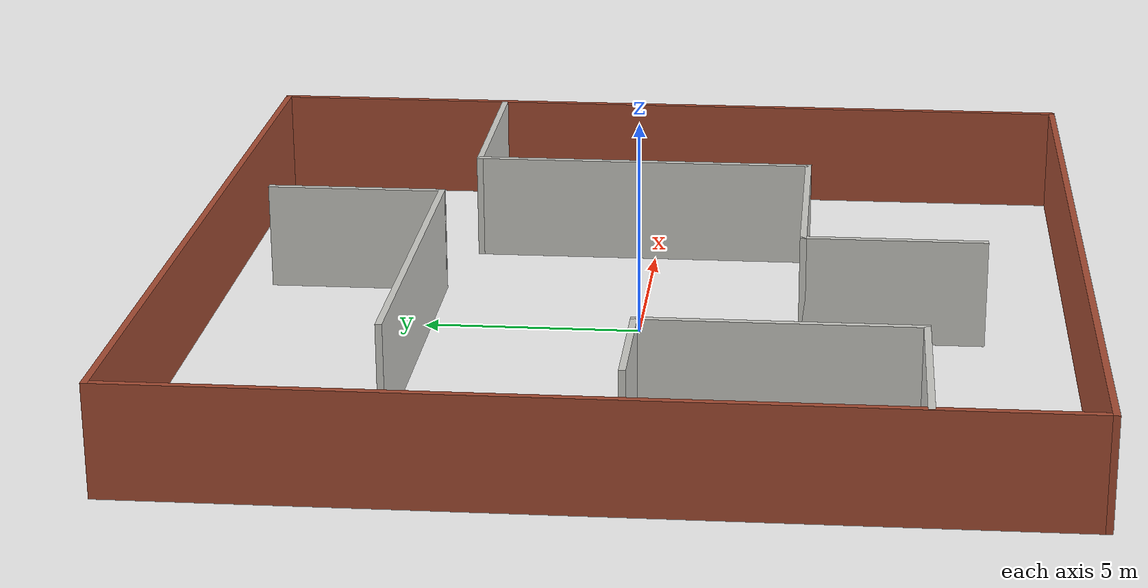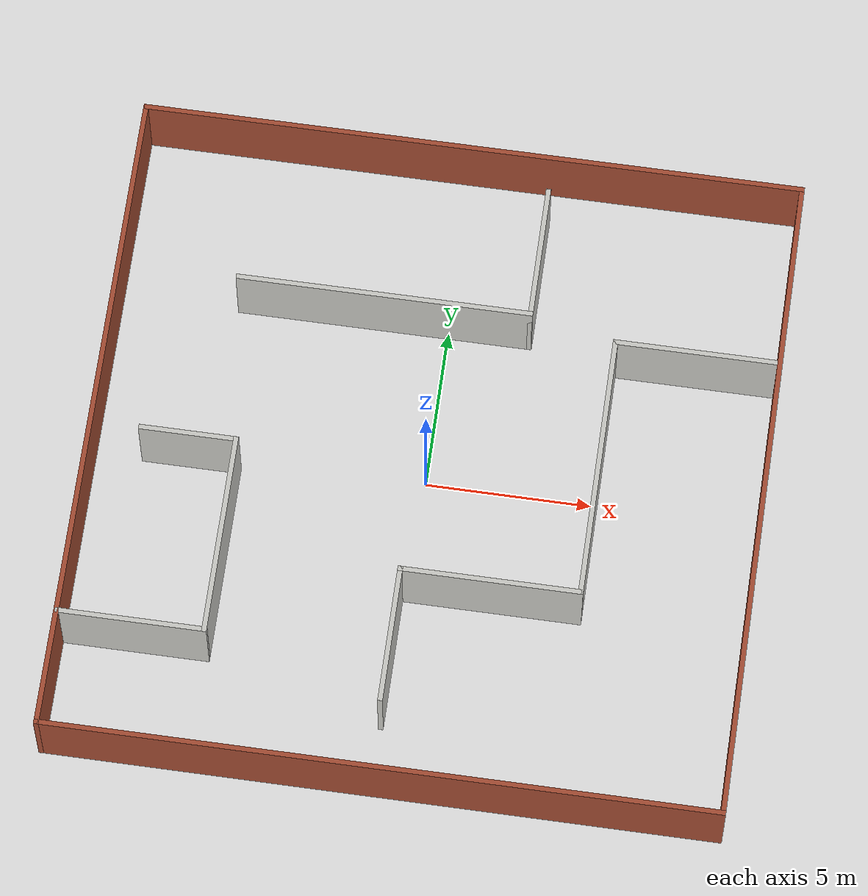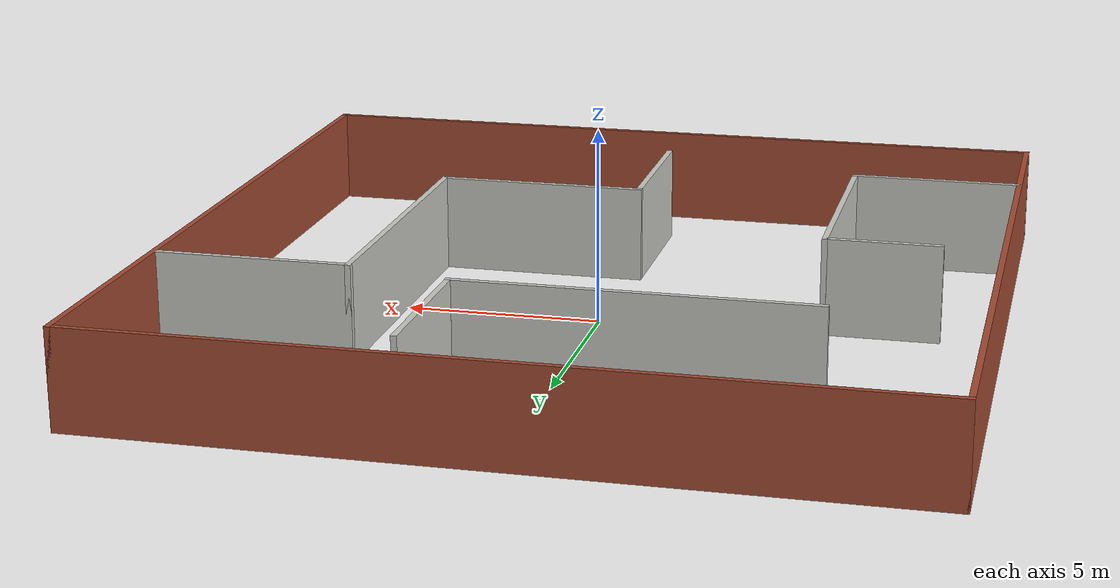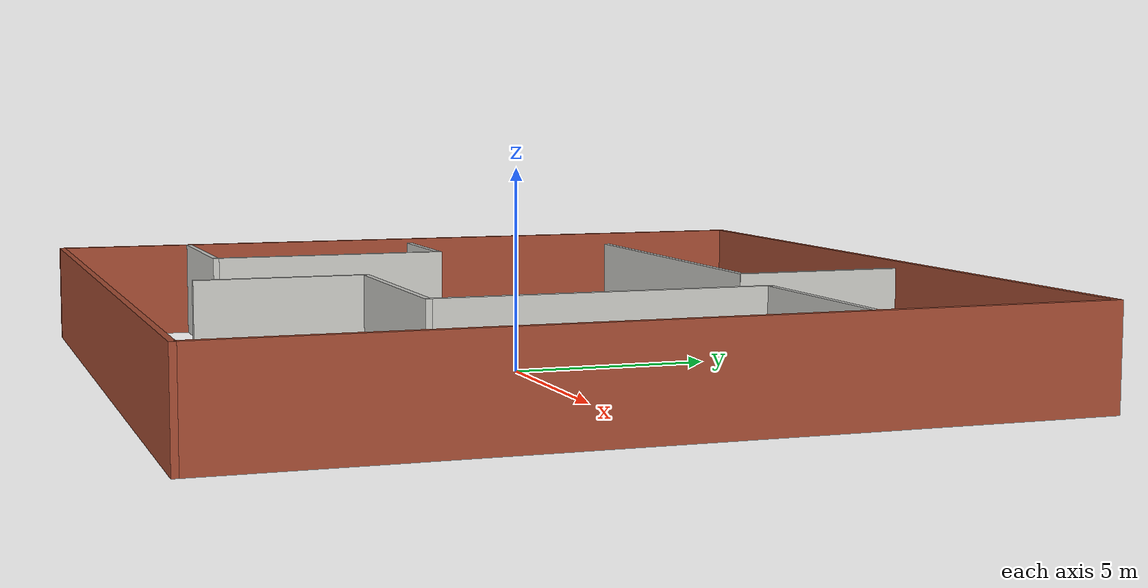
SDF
<?xml version='1.0'?>
<sdf version='1.7'>
  <model name='mapokela'>
    <pose>0.014826 0.104516 0 0 -0 0</pose>
    <link name='Wall_1'>
      <collision name='Wall_1_Collision'>
        <geometry>
          <box>
            <size>20.25 0.15 2.5</size>
          </box>
        </geometry>
        <pose>0 0 1.25 0 -0 0</pose>
      </collision>
      <visual name='Wall_1_Visual'>
        <pose>0 0 1.25 0 -0 0</pose>
        <geometry>
          <box>
            <size>20.25 0.15 2.5</size>
          </box>
        </geometry>
        <material>
          <script>
            <uri>file://media/materials/scripts/gazebo.material</uri>
            <name>Gazebo/Bricks</name>
          </script>
          <ambient>1 1 1 1</ambient>
        </material>
        <meta>
          <layer>0</layer>
        </meta>
      </visual>
      <pose>-0 10.05 0 0 -0 0</pose>
    </link>
    <link name='Wall_10'>
      <collision name='Wall_10_Collision'>
        <geometry>
          <box>
            <size>3 0.15 2.5</size>
          </box>
        </geometry>
        <pose>0 0 1.25 0 -0 0</pose>
      </collision>
      <visual name='Wall_10_Visual'>
        <pose>0 0 1.25 0 -0 0</pose>
        <geometry>
          <box>
            <size>3 0.15 2.5</size>
          </box>
        </geometry>
        <material>
          <script>
            <uri>file://media/materials/scripts/gazebo.material</uri>
            <name>Gazebo/CeilingTiled</name>
          </script>
          <ambient>0.435294 0.796078 0.67451 1</ambient>
        </material>
        <meta>
          <layer>0</layer>
        </meta>
      </visual>
      <pose>-7.09059 -0.435326 0 0 -0 3.14159</pose>
    </link>
    <link name='Wall_12'>
      <collision name='Wall_12_Collision'>
        <geometry>
          <box>
            <size>8.25 0.15 2.5</size>
          </box>
        </geometry>
        <pose>0 0 1.25 0 -0 0</pose>
      </collision>
      <visual name='Wall_12_Visual'>
        <pose>0 0 1.25 0 -0 0</pose>
        <geometry>
          <box>
            <size>8.25 0.15 2.5</size>
          </box>
        </geometry>
        <material>
          <script>
            <uri>file://media/materials/scripts/gazebo.material</uri>
            <name>Gazebo/CeilingTiled</name>
          </script>
          <ambient>0.760784 0.662745 0.627451 1</ambient>
        </material>
        <meta>
          <layer>0</layer>
        </meta>
      </visual>
      <pose>5.0956 0.20752 0 0 -0 -1.5708</pose>
    </link>
    <link name='Wall_13'>
      <collision name='Wall_13_Collision'>
        <geometry>
          <box>
            <size>5.5 0.15 2.5</size>
          </box>
        </geometry>
        <pose>0 0 1.25 0 -0 0</pose>
      </collision>
      <visual name='Wall_13_Visual'>
        <pose>0 0 1.25 0 -0 0</pose>
        <geometry>
          <box>
            <size>5.5 0.15 2.5</size>
          </box>
        </geometry>
        <material>
          <script>
            <uri>file://media/materials/scripts/gazebo.material</uri>
            <name>Gazebo/CeilingTiled</name>
          </script>
          <ambient>0.760784 0.662745 0.627451 1</ambient>
        </material>
        <meta>
          <layer>0</layer>
        </meta>
      </visual>
      <pose>2.4206 -3.84248 0 0 -0 3.14159</pose>
    </link>
    <link name='Wall_14'>
      <collision name='Wall_14_Collision'>
        <geometry>
          <box>
            <size>4.25 0.15 2.5</size>
          </box>
        </geometry>
        <pose>0 0 1.25 0 -0 0</pose>
      </collision>
      <visual name='Wall_14_Visual'>
        <pose>0 0 1.25 0 -0 0</pose>
        <geometry>
          <box>
            <size>4.25 0.15 2.5</size>
          </box>
        </geometry>
        <material>
          <script>
            <uri>file://media/materials/scripts/gazebo.material</uri>
            <name>Gazebo/CeilingTiled</name>
          </script>
          <ambient>0.760784 0.662745 0.627451 1</ambient>
        </material>
        <meta>
          <layer>0</layer>
        </meta>
      </visual>
      <pose>-0.254404 -5.89248 0 0 -0 -1.5708</pose>
    </link>
    <link name='Wall_16'>
      <collision name='Wall_16_Collision'>
        <geometry>
          <box>
            <size>9 0.15 2.5</size>
          </box>
        </geometry>
        <pose>0 0 1.25 0 -0 0</pose>
      </collision>
      <visual name='Wall_16_Visual'>
        <pose>0 0 1.25 0 -0 0</pose>
        <geometry>
          <box>
            <size>9 0.15 2.5</size>
          </box>
        </geometry>
        <material>
          <script>
            <uri>file://media/materials/scripts/gazebo.material</uri>
            <name>Gazebo/CeilingTiled</name>
          </script>
          <ambient>0.2 0.819608 0.478431 1</ambient>
        </material>
        <meta>
          <layer>0</layer>
        </meta>
      </visual>
      <pose>-1.96879 4.8239 0 0 -0 0</pose>
    </link>
    <link name='Wall_17'>
      <collision name='Wall_17_Collision'>
        <geometry>
          <box>
            <size>4.25 0.15 2.5</size>
          </box>
        </geometry>
        <pose>0 0 1.25 0 -0 0</pose>
      </collision>
      <visual name='Wall_17_Visual'>
        <pose>0 0 1.25 0 -0 0</pose>
        <geometry>
          <box>
            <size>4.25 0.15 2.5</size>
          </box>
        </geometry>
        <material>
          <script>
            <uri>file://media/materials/scripts/gazebo.material</uri>
            <name>Gazebo/CeilingTiled</name>
          </script>
          <ambient>0.2 0.819608 0.478431 1</ambient>
        </material>
        <meta>
          <layer>0</layer>
        </meta>
      </visual>
      <pose>2.45621 6.8739 0 0 -0 1.5708</pose>
    </link>
    <link name='Wall_19'>
      <collision name='Wall_19_Collision'>
        <geometry>
          <box>
            <size>5 0.15 2.5</size>
          </box>
        </geometry>
        <pose>0 0 1.25 0 -0 0</pose>
      </collision>
      <visual name='Wall_19_Visual'>
        <pose>0 0 1.25 0 -0 0</pose>
        <geometry>
          <box>
            <size>5 0.15 2.5</size>
          </box>
        </geometry>
        <material>
          <script>
            <uri>file://media/materials/scripts/gazebo.material</uri>
            <name>Gazebo/CeilingTiled</name>
          </script>
          <ambient>1 1 1 1</ambient>
        </material>
        <meta>
          <layer>0</layer>
        </meta>
      </visual>
      <pose>7.5206 4.25752 0 0 -0 0</pose>
    </link>
    <link name='Wall_3'>
      <collision name='Wall_3_Collision'>
        <geometry>
          <box>
            <size>20.25 0.15 2.5</size>
          </box>
        </geometry>
        <pose>0 0 1.25 0 -0 0</pose>
      </collision>
      <visual name='Wall_3_Visual'>
        <pose>0 0 1.25 0 -0 0</pose>
        <geometry>
          <box>
            <size>20.25 0.15 2.5</size>
          </box>
        </geometry>
        <material>
          <script>
            <uri>file://media/materials/scripts/gazebo.material</uri>
            <name>Gazebo/Bricks</name>
          </script>
          <ambient>1 1 1 1</ambient>
        </material>
        <meta>
          <layer>0</layer>
        </meta>
      </visual>
      <pose>10.05 0 0 0 -0 -1.5708</pose>
    </link>
    <link name='Wall_4'>
      <collision name='Wall_4_Collision'>
        <geometry>
          <box>
            <size>20.25 0.15 2.5</size>
          </box>
        </geometry>
        <pose>0 0 1.25 0 -0 0</pose>
      </collision>
      <visual name='Wall_4_Visual'>
        <pose>0 0 1.25 0 -0 0</pose>
        <geometry>
          <box>
            <size>20.25 0.15 2.5</size>
          </box>
        </geometry>
        <material>
          <script>
            <uri>file://media/materials/scripts/gazebo.material</uri>
            <name>Gazebo/Bricks</name>
          </script>
          <ambient>1 1 1 1</ambient>
        </material>
        <meta>
          <layer>0</layer>
        </meta>
      </visual>
      <pose>-0 -10.05 0 0 -0 3.14159</pose>
    </link>
    <link name='Wall_5'>
      <collision name='Wall_5_Collision'>
        <geometry>
          <box>
            <size>20.25 0.15 2.5</size>
          </box>
        </geometry>
        <pose>0 0 1.25 0 -0 0</pose>
      </collision>
      <visual name='Wall_5_Visual'>
        <pose>0 0 1.25 0 -0 0</pose>
        <geometry>
          <box>
            <size>20.25 0.15 2.5</size>
          </box>
        </geometry>
        <material>
          <script>
            <uri>file://media/materials/scripts/gazebo.material</uri>
            <name>Gazebo/Bricks</name>
          </script>
          <ambient>1 1 1 1</ambient>
        </material>
        <meta>
          <layer>0</layer>
        </meta>
      </visual>
      <pose>-10.05 0 0 0 -0 1.5708</pose>
    </link>
    <link name='Wall_7'>
      <collision name='Wall_7_Collision'>
        <geometry>
          <box>
            <size>6.25 0.15 2.5</size>
          </box>
        </geometry>
        <pose>0 0 1.25 0 -0 0</pose>
      </collision>
      <visual name='Wall_7_Visual'>
        <pose>0 0 1.25 0 -0 0</pose>
        <geometry>
          <box>
            <size>6.25 0.15 2.5</size>
          </box>
        </geometry>
        <material>
          <script>
            <uri>file://media/materials/scripts/gazebo.material</uri>
            <name>Gazebo/CeilingTiled</name>
          </script>
          <ambient>0.435294 0.796078 0.67451 1</ambient>
        </material>
        <meta>
          <layer>0</layer>
        </meta>
      </visual>
      <pose>-5.66559 -3.48533 0 0 -0 -1.5708</pose>
    </link>
    <link name='Wall_8'>
      <collision name='Wall_8_Collision'>
        <geometry>
          <box>
            <size>4.5 0.15 2.5</size>
          </box>
        </geometry>
        <pose>0 0 1.25 0 -0 0</pose>
      </collision>
      <visual name='Wall_8_Visual'>
        <pose>0 0 1.25 0 -0 0</pose>
        <geometry>
          <box>
            <size>4.5 0.15 2.5</size>
          </box>
        </geometry>
        <material>
          <script>
            <uri>file://media/materials/scripts/gazebo.material</uri>
            <name>Gazebo/CeilingTiled</name>
          </script>
          <ambient>0.435294 0.796078 0.67451 1</ambient>
        </material>
        <meta>
          <layer>0</layer>
        </meta>
      </visual>
      <pose>-7.84059 -6.53533 0 0 -0 3.14159</pose>
    </link>
    <static>1</static>
  </model>
</sdf>
